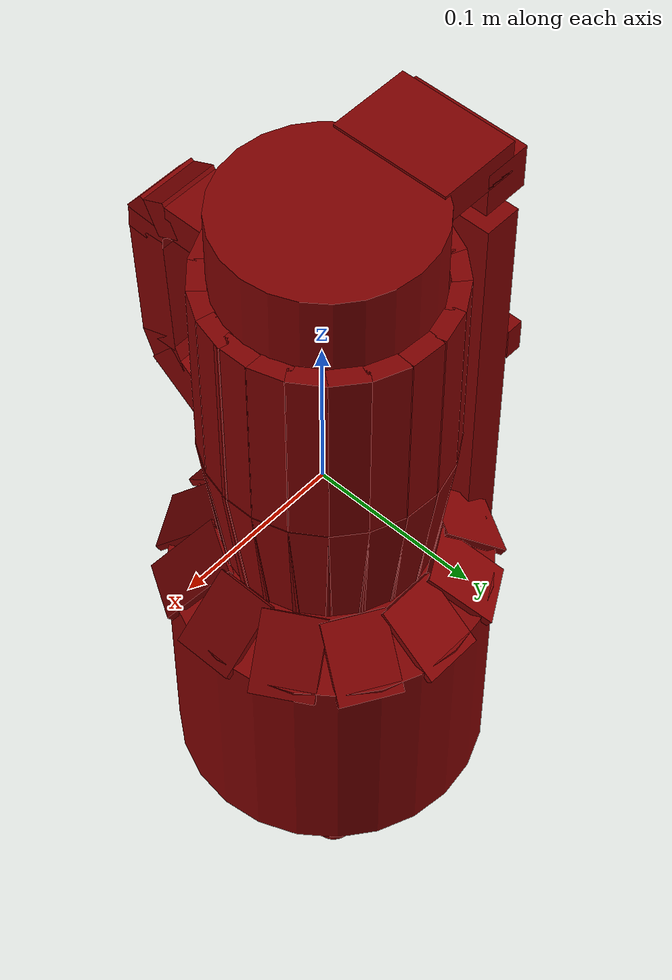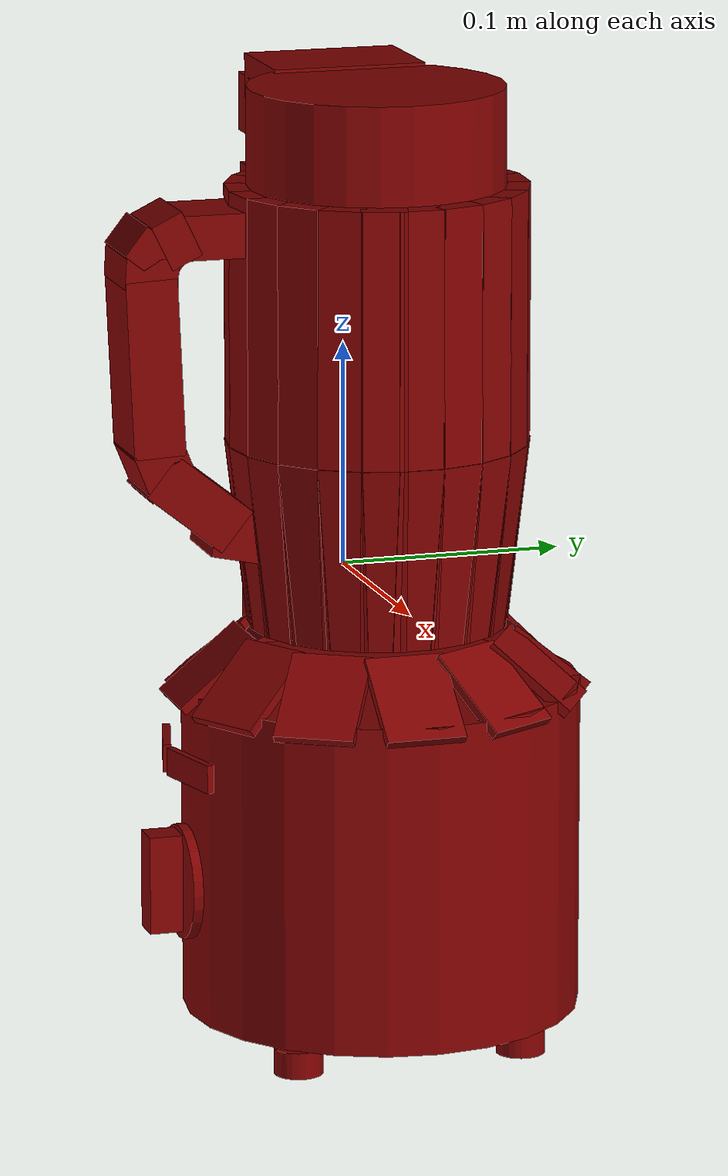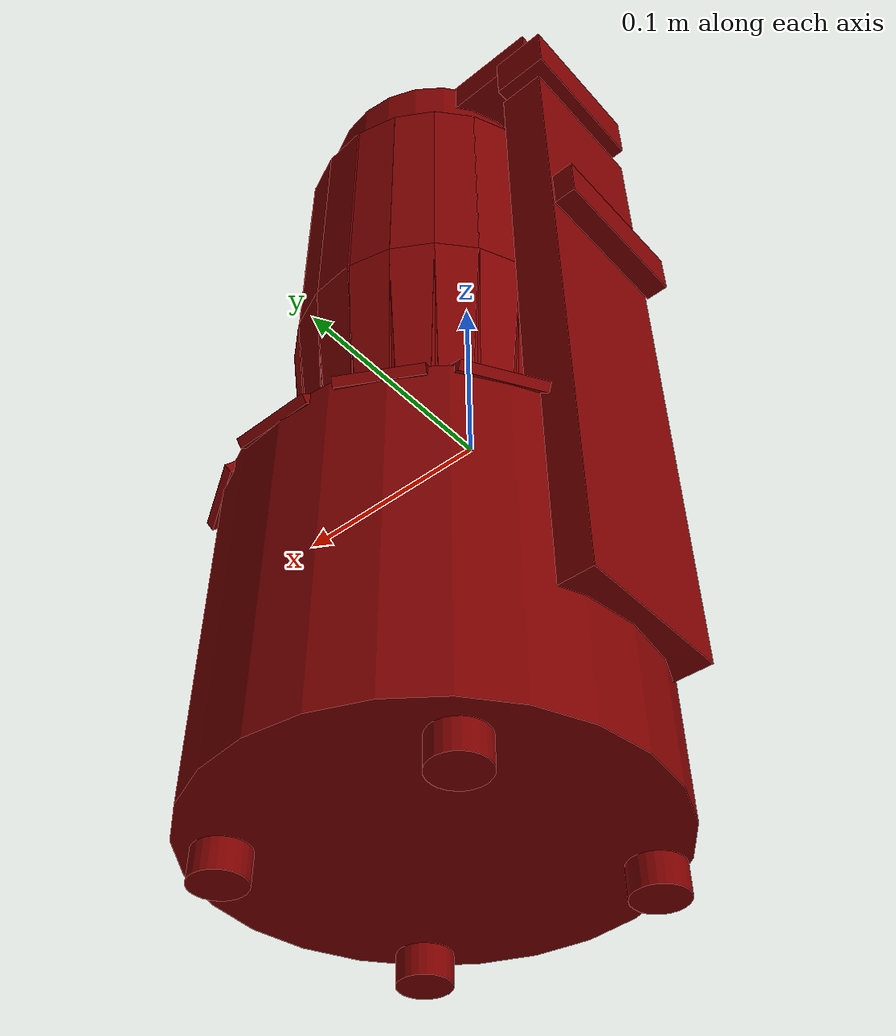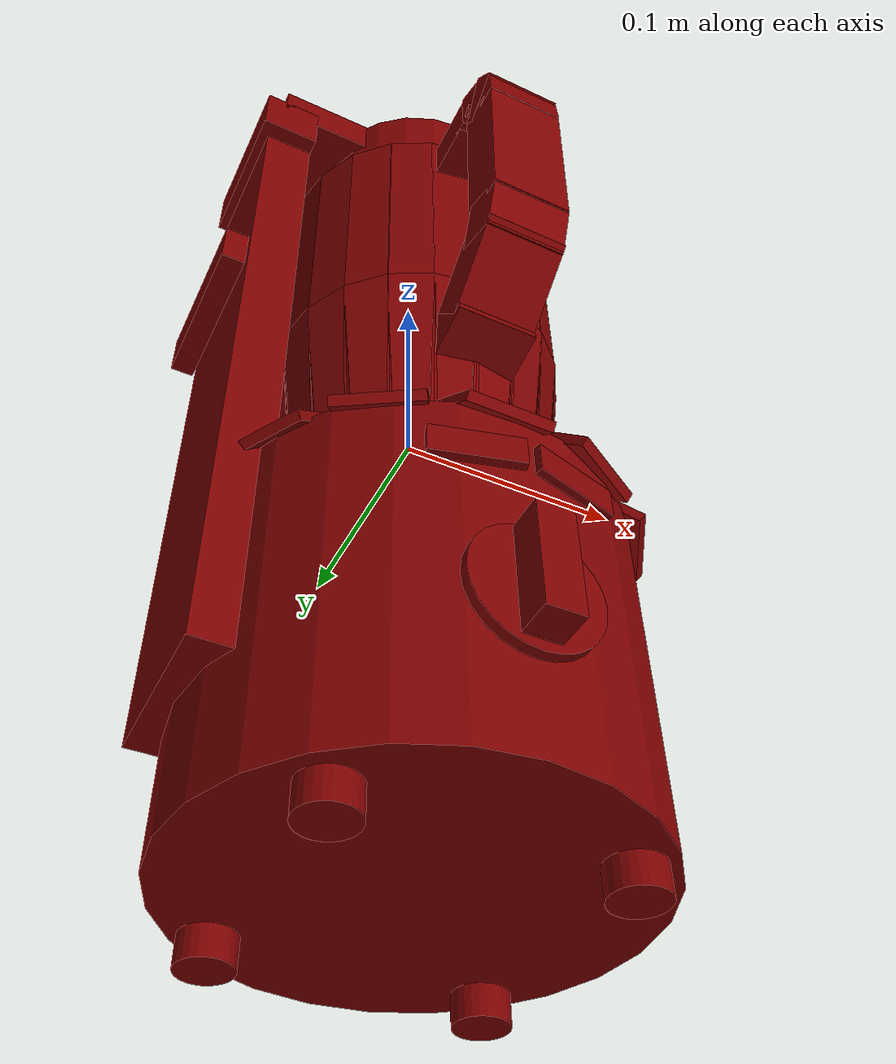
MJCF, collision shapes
<?xml version='1.0' encoding='UTF-8'?>
<mujoco model="model">
  <option timestep="0.002" gravity="0.0 0.0 -9.81"/>
  <compiler angle="radian"/>
  <asset>
    <mesh file="visuals/Blade001.obj" name="Blade001_vis"/>
    <mesh file="visuals/Body001.obj" name="Body001_vis"/>
    <mesh file="visuals/Button001.obj" name="Button001_vis"/>
    <mesh file="visuals/Button002.obj" name="Button002_vis"/>
    <mesh file="visuals/Jug001.obj" name="Jug001_vis"/>
    <mesh file="visuals/Jug001_Clear.obj" name="Jug001_Clear_vis"/>
    <mesh file="visuals/Knob001.obj" name="Knob001_vis"/>
    <mesh file="visuals/Lid001.obj" name="Lid001_vis"/>
    <texture file="visuals/T_BC001.png" name="Body001_material" type="2d"/>
    <material name="Body001_material" rgba="1 1 1 1.0" texture="Body001_material" shininess="0.5" specular="5"/>
    <texture file="visuals/T_BC001.png" name="Button001_material" type="2d"/>
    <material name="Button001_material" rgba="1 1 1 1.0" texture="Button001_material" shininess="0.5" specular="5"/>
    <texture file="visuals/T_BC001.png" name="Button002_material" type="2d"/>
    <material name="Button002_material" rgba="1 1 1 1.0" texture="Button002_material" shininess="0.5" specular="5"/>
    <material name="Jug001_Clear_material" rgba="0.20520606637001038 0.20520606637001038 0.20520606637001038 0.699999988079071" shininess="0.5" specular="0.33333333333333337"/>
    <texture file="visuals/T_BC001.png" name="Jug001_material" type="2d"/>
    <material name="Jug001_material" rgba="1 1 1 1.0" texture="Jug001_material" shininess="0.5" specular="5"/>
    <texture file="visuals/T_BC001.png" name="Blade001_material" type="2d"/>
    <material name="Blade001_material" rgba="1 1 1 1.0" texture="Blade001_material" shininess="0.5" specular="5"/>
    <texture file="visuals/T_BC001.png" name="Lid001_material" type="2d"/>
    <material name="Lid001_material" rgba="1 1 1 1.0" texture="Lid001_material" shininess="0.5" specular="5"/>
    <texture file="visuals/T_BC001.png" name="Knob001_material" type="2d"/>
    <material name="Knob001_material" rgba="1 1 1 1.0" texture="Knob001_material" shininess="0.5" specular="5"/>
  </asset>
  <default>
    <default class="visual">
      <geom conaffinity="0" contype="0" group="1" type="mesh"/>
    </default>
    <default class="collision">
      <geom group="0" rgba="0.5 0 0 0.5"/>
    </default>
    <default class="spawn">
      <geom group="0" rgba="1 1 1 0.5" contype="0" conaffinity="0"/>
      <site group="0" rgba="1 1 1 0.5"/>
    </default>
    <default class="region">
      <geom group="1" conaffinity="0" contype="0" rgba="0 1 0 0"/>
    </default>
  </default>
  <worldbody>
    <body>
      <body name="object">
        <geom mesh="Body001_vis" type="mesh" solimp="0.998 0.998 0.001" solref="0.001 1" friction="0.95 0.3 0.1" class="visual" material="Body001_material"/>
        <geom class="collision" type="cylinder" pos="0.009167336858808994 0.014553274028003216 -0.12578082084655762" size="0.08897651731967926 0.0742231234908104" quat="1.0 0.0 0.0 0.0"/>
        <geom class="collision" type="cylinder" pos="-0.0438687689602375 -0.04000339284539223 -0.20879435539245605" size="0.010947813279926777 0.005990022327750921" quat="1.0 0.0 0.0 0.0"/>
        <geom class="collision" type="cylinder" pos="-0.0438687689602375 0.06400258839130402 -0.20879435539245605" size="0.010947813279926777 0.005990022327750921" quat="1.0 0.0 0.0 0.0"/>
        <geom class="collision" type="cylinder" pos="0.06053082272410393 0.06400258839130402 -0.20879435539245605" size="0.010947813279926777 0.005990022327750921" quat="1.0 0.0 0.0 0.0"/>
        <geom class="collision" type="cylinder" pos="0.06053082272410393 -0.03901239112019539 -0.20879435539245605" size="0.010947813279926777 0.005990022327750921" quat="1.0 0.0 0.0 0.0"/>
        <geom class="collision" type="box" pos="-0.07675522565841675 0.012925026938319206 0.00845596194267273" size="0.01111669186502695 0.03465075045824051 0.1581081598997116" quat="1.0 0.0 0.0 0.0"/>
        <geom class="collision" type="box" pos="-0.09404212236404419 0.012925045564770699 0.06534761190414429" size="0.005173718556761742 0.03465075045824051 0.010062074288725853" quat="1.0 0.0 0.0 0.0"/>
        <geom class="collision" type="box" pos="0.003289484418928623 -0.06258165836334229 -0.04266763851046562" size="0.01791430450975895 0.002153511391952634 0.022576989606022835" quat="0.9047101140022278 -0.42602771520614624 0.0 0.0"/>
        <geom class="collision" type="box" pos="0.08304135501384735 0.007437243591994047 -0.04266763851046562" size="0.01791430450975895 0.002153511391952634 0.022576989606022835" quat="0.6397266983985901 -0.30124709010124207 -0.30124709010124207 0.6397266387939453"/>
        <geom class="collision" type="box" pos="0.0130224684253335 0.08718912303447723 -0.04266763851046562" size="0.01791430450975895 0.002153511391952634 0.022576989606022835" quat="6.830371290789117e-08 -3.2164201968498674e-08 -0.42602771520614624 0.9047101140022278"/>
        <geom class="collision" type="box" pos="-0.06672942638397217 0.017170220613479614 -0.04266763851046562" size="0.01791430450975895 0.002153511391952634 0.022576989606022835" quat="0.6397266983985901 -0.30124709010124207 0.30124709010124207 -0.6397266387939453"/>
        <geom class="collision" type="box" pos="-0.05915476381778717 -0.02087409794330597 -0.04266763851046562" size="0.01791430450975895 0.0021535116247832775 0.022576989606022835" quat="0.7833322882652283 -0.36887127161026 0.21315228939056396 -0.45264843106269836"/>
        <geom class="collision" type="box" pos="-0.025021851062774658 0.07961447536945343 -0.04266763851046562" size="0.01791430450975895 0.002153511391952634 0.022576991468667984" quat="0.23382920026779175 -0.11011011153459549 0.4115525782108307 -0.8739703297615051"/>
        <geom class="collision" type="box" pos="0.07546672224998474 0.04548153281211853 -0.04266763851046562" size="0.0179143063724041 0.002153511391952634 0.022576991468667984" quat="0.4526483714580536 -0.2131519764661789 -0.3688710331916809 0.7833325266838074"/>
        <geom class="collision" type="box" pos="0.04133378341794014 -0.05500700697302818 -0.04266763851046562" size="0.01791430450975895 0.002153511391952634 0.022576989606022835" quat="0.8739704489707947 -0.41155242919921875 -0.1101100891828537 0.2338290959596634"/>
        <geom class="collision" type="box" pos="0.07005342841148376 -0.030125122517347336 -0.04266763851046562" size="0.01791430450975895 0.002153511391952634 0.022576989606022835" quat="0.7862945199012756 -0.37026602029800415 -0.2107197642326355 0.4474831223487854"/>
        <geom class="collision" type="box" pos="0.050584837794303894 0.07420118153095245 -0.04266763851046562" size="0.01791430450975895 0.002153511391952634 0.022576989606022835" quat="0.239576056599617 -0.11281633377075195 -0.41081881523132324 0.8724125623703003"/>
        <geom class="collision" type="box" pos="-0.05374151095747948 0.054732564836740494 -0.04266763851046562" size="0.0179143063724041 0.0021535116247832775 0.022576989606022835" quat="0.44748300313949585 -0.2107197493314743 0.3702661097049713 -0.7862945795059204"/>
        <geom class="collision" type="box" pos="-0.034272849559783936 -0.04959375038743019 -0.04266763851046562" size="0.01791430450975895 0.002153511391952634 0.022576989606022835" quat="0.8724126815795898 -0.41081884503364563 0.11281614750623703 -0.23957571387290955"/>
        <body name="Button001">
          <joint axis="0.0 1.0 0.0" pos="0.027376335114240646 -0.0752200186252594 -0.08264592289924622" limited="true" name="Button001_joint" range="0.0 0.003" type="slide" damping="1" frictionloss="1" armature=".01" stiffness="0.05"/>
          <geom mesh="Button001_vis" type="mesh" solimp="0.998 0.998 0.001" solref="0.001 1" friction="0.95 0.3 0.1" class="visual" material="Button001_material"/>
          <geom class="collision" type="box" pos="0.027224652469158173 -0.07862499356269836 -0.0820646584033966" size="0.01785707287490368 0.0016842279583215714 0.006336010526865721" quat="1.9311312371428357e-07 0.9918130040168762 0.12769858539104462 2.4863851422196603e-08"/>
        </body>
        <body name="Button002">
          <joint axis="0.0 1.0 0.0" pos="-0.011064638383686543 -0.0752200186252594 -0.082645945250988" limited="true" name="Button002_joint" range="0.0 0.003" type="slide" damping="1" frictionloss="1" armature=".01" stiffness="0.05"/>
          <geom mesh="Button002_vis" type="mesh" solimp="0.998 0.998 0.001" solref="0.001 1" friction="0.95 0.3 0.1" class="visual" material="Button002_material"/>
          <geom class="collision" type="box" pos="-0.011580152437090874 -0.07876469194889069 -0.0820646584033966" size="0.01785707287490368 0.0018286375561729074 0.006336010526865721" quat="0.9918130040168762 0.0 0.0 -0.12769854068756104"/>
        </body>
        <body name="Jug001_Clear">
          <geom class="region" name="reg_int" type="box" pos="0.007289262488484383 0.009716581553220749 0.08258548565208912" size="0.026410274043679238 0.04033459147810936 0.059037130162119866"/>
          <joint axis="0.0 0.0 1.0" pos="0.00863971933722496 -0.00982004776597023 0.05251220613718033" limited="true" name="Jug001_Clear_joint" range="0.0 0.1" type="slide" damping="50" frictionloss="0.1" armature="0" stiffness="0.01" springref="-0.1"/>
          <geom mesh="Jug001_Clear_vis" type="mesh" solimp="0.998 0.998 0.001" solref="0.001 1" friction="0.95 0.3 0.1" class="visual" material="Jug001_Clear_material"/>
          <geom class="collision" type="box" pos="0.008145440369844437 -0.09233808517456055 0.0985330119729042" size="0.017747683450579643 0.011645330116152763 0.03932574763894081" quat="0.9997620582580566 0.02181391417980194 0.0 0.0"/>
          <geom class="collision" type="box" pos="0.008145440369844437 -0.0727827250957489 0.03710109740495682" size="0.017747683450579643 0.011384028941392899 0.02155306562781334" quat="0.9015772342681885 0.432618111371994 9.606053085789741e-17 -1.3425420219842853e-23"/>
          <geom class="collision" type="box" pos="0.008145440369844437 -0.063360795378685 0.15545439720153809" size="0.017747683450579643 0.009914803318679333 0.015667669475078583" quat="0.7071067094802856 -0.70710688829422 -1.5700925641616852e-16 -1.2790027470567158e-23"/>
          <geom class="collision" type="box" pos="0.0706438422203064 0.01299198903143406 0.11365347355604172" size="0.00505654513835907 0.010174985975027084 0.058163709938526154" quat="1.0 0.0 0.0 0.0"/>
          <geom class="collision" type="box" pos="0.06611348688602448 0.012991990894079208 0.0168859101831913" size="0.0050565446726977825 0.010174985975027084 0.041744377464056015" quat="0.9982317090034485 -6.2111596180430655e-15 0.05944285914301872 7.986672656556948e-09"/>
          <geom class="collision" type="box" pos="0.06798288226127625 0.030981726944446564 0.11365347355604172" size="0.00505654513835907 0.01017498504370451 0.058163709938526154" quat="0.9890410900115967 0.0 0.0 0.14764051139354706"/>
          <geom class="collision" type="box" pos="0.06365001201629639 0.029658660292625427 0.0168859101831913" size="0.005056544207036495 0.01017498504370451 0.041744377464056015" quat="0.9872921705245972 -0.008776139467954636 0.0587911531329155 0.14737960696220398"/>
          <geom class="collision" type="box" pos="0.060215145349502563 0.04736381396651268 0.11365347355604172" size="0.0050565446726977825 0.01017498504370451 0.058163709938526154" quat="0.9565365314483643 0.0 0.0 0.2916126251220703"/>
          <geom class="collision" type="box" pos="0.05645528435707092 0.044836435467004776 0.01688591204583645" size="0.0050565446726977825 0.010174985975027084 0.041744377464056015" quat="0.954845130443573 -0.017334159463644028 0.05685893073678017 0.29109683632850647"/>
          <geom class="collision" type="box" pos="0.04783382639288902 0.06092069670557976 0.11365347355604172" size="0.00505654513835907 0.010174985975027084 0.058163709938526154" quat="0.9023839831352234 0.0 0.0 0.430932879447937"/>
          <geom class="collision" type="box" pos="0.0449860580265522 0.05739729106426239 0.016885913908481598" size="0.0050565446726977825 0.010174985975027084 0.041744377464056015" quat="0.9007882475852966 -0.025615708902478218 0.05363990366458893 0.4301709830760956"/>
          <geom class="collision" type="box" pos="0.031883951276540756 0.07027436792850494 0.11365347355604172" size="0.0050565446726977825 0.01017498504370451 0.058163709938526154" quat="0.8274691104888916 0.0 0.0 0.561511218547821"/>
          <geom class="collision" type="box" pos="0.030210386961698532 0.06606444716453552 0.016885913908481598" size="0.005056543741375208 0.01017498504370451 0.041744377464056015" quat="0.8260060548782349 -0.03337758034467697 0.04918677359819412 0.5605181455612183"/>
          <geom class="collision" type="box" pos="0.013209659606218338 0.07452081143856049 0.11365347355604172" size="0.00505654513835907 0.010174986906349659 0.058163709938526154" quat="0.7301030158996582 0.0 0.0 0.6833370923995972"/>
          <geom class="collision" type="box" pos="0.012910204008221626 0.07000035047531128 0.016885913908481598" size="0.005056544207036495 0.010174986906349659 0.041744377464056015" quat="0.7288120985031128 -0.04061921685934067 0.043399106711149216 0.6821286678314209"/>
          <geom class="collision" type="box" pos="-0.0062417201697826385 0.07273058593273163 0.11365347355604172" size="0.005056543741375208 0.01017498504370451 0.058163709938526154" quat="0.6124966144561768 0.0 0.0 0.790473222732544"/>
          <geom class="collision" type="box" pos="-0.005110526457428932 0.06834371387958527 0.016885913908481598" size="0.0050565446726977825 0.010174985975027084 0.041744377464056015" quat="0.6114134192466736 -0.04698765277862549 0.036408279091119766 0.7890755534172058"/>
          <geom class="collision" type="box" pos="-0.023400038480758667 0.06541426479816437 0.11365347355604172" size="0.00505654513835907 0.010174985975027084 0.058163709938526154" quat="0.48572608828544617 0.0 0.0 0.8741110563278198"/>
          <geom class="collision" type="box" pos="-0.021007366478443146 0.0615672804415226 0.01688591204583645" size="0.0050565446726977825 0.010174986906349659 0.041744377464056015" quat="0.4848670959472656 -0.05195935070514679 0.02887275069952011 0.8725654482841492"/>
          <geom class="collision" type="box" pos="-0.037419747561216354 0.053482893854379654 0.11365347355604172" size="0.00505654513835907 0.010174985975027084 0.058163709938526154" quat="0.3496263027191162 0.0 0.0 0.9368892312049866"/>
          <geom class="collision" type="box" pos="-0.03399694710969925 0.05051495507359505 0.016885913908481598" size="0.005056544207036495 0.010174985975027084 0.041744377464056015" quat="0.34900808334350586 -0.055690962821245193 0.020782630890607834 0.9352325797080994"/>
          <geom class="collision" type="box" pos="-0.04721221700310707 0.03810887411236763 0.11365347355604172" size="0.00505654513835907 0.010174986906349659 0.058163709938526154" quat="0.20713196694850922 0.0 0.0 0.9783130288124084"/>
          <geom class="collision" type="box" pos="-0.04307058826088905 0.0362728089094162 0.01688591204583645" size="0.0050565446726977825 0.010174986906349659 0.041744377464056015" quat="0.20676571130752563 -0.058153312653303146 0.012312428094446659 0.9765831232070923"/>
          <geom class="collision" type="box" pos="-0.052132368087768555 0.020062051713466644 0.11365347355604172" size="0.00505654513835907 0.010174985975027084 0.058163709938526154" quat="0.05616064369678497 0.0 0.0 0.9984217286109924"/>
          <geom class="collision" type="box" pos="-0.04763057827949524 0.019554000347852707 0.01688591204583645" size="0.0050565446726977825 0.010174985975027084 0.041744377464056015" quat="0.056061338633298874 -0.05934862047433853 0.00333832623437047 0.9966562986373901"/>
          <geom class="collision" type="box" pos="-0.05142613872885704 0.0014652842655777931 0.11365347355604172" size="0.00505654513835907 0.010174985975027084 0.058163709938526154" quat="0.09533408284187317 0.0 0.0 -0.9954453110694885"/>
          <geom class="collision" type="box" pos="-0.046978119760751724 0.002325148321688175 0.01688591204583645" size="0.005056544207036495 0.010174985975027084 0.041744377464056015" quat="0.09516550600528717 0.059171710163354874 0.0056668901816010475 -0.9936851263046265"/>
          <geom class="collision" type="box" pos="-0.045064400881528854 -0.016317259520292282 0.11365347355604172" size="0.00505654513835907 0.010174985975027084 0.058163709938526154" quat="0.2468382567167282 0.0 0.0 -0.9690566658973694"/>
          <geom class="collision" type="box" pos="-0.041086096316576004 -0.014149930328130722 0.01688591204583645" size="0.0050565446726977825 0.010174985975027084 0.041744377464056015" quat="0.24640178680419922 0.057603031396865845 0.014672650955617428 -0.9673431515693665"/>
          <geom class="collision" type="box" pos="-0.033940453082323074 -0.031018968671560287 0.11365347355604172" size="0.00505654513835907 0.010174985975027084 0.058163709938526154" quat="0.38909995555877686 0.0 0.0 -0.9211955666542053"/>
          <geom class="collision" type="box" pos="-0.03078186884522438 -0.027771256864070892 0.01688591204583645" size="0.0050565446726977825 0.010174985975027084 0.041744377464056015" quat="0.38841190934181213 0.05475810542702675 0.023129049688577652 -0.9195666313171387"/>
          <geom class="collision" type="box" pos="-0.01852252334356308 -0.0419926680624485 0.11365347355604172" size="0.00505654513835907 0.010174985975027084 0.058163709938526154" quat="0.5260125398635864 0.0 0.0 -0.8504768013954163"/>
          <geom class="collision" type="box" pos="-0.016499163582921028 -0.03793924301862717 0.01688591204583645" size="0.0050565446726977825 0.010174985975027084 0.041744377464056015" quat="0.5250824093818665 0.05055440962314606 0.03126746788620949 -0.8489729762077332"/>
          <geom class="collision" type="box" pos="-0.0011654067784547806 -0.04765874519944191 0.11365347355604172" size="0.00505654513835907 0.010174985975027084 0.058163709938526154" quat="0.6462706327438354 0.0 0.0 -0.7631083130836487"/>
          <geom class="collision" type="box" pos="-0.00041939783841371536 -0.04319022223353386 0.0168859101831913" size="0.005056544207036495 0.010174985975027084 0.041744377464056015" quat="0.6451278328895569 0.04536105692386627 0.03841593489050865 -0.7617589235305786"/>
          <geom class="collision" type="box" pos="0.016947153955698013 -0.04800551012158394 0.11365347355604172" size="0.005056543741375208 0.010174984112381935 0.058163709938526154" quat="0.751477062702179 0.0 0.0 -0.6597592234611511"/>
          <geom class="collision" type="box" pos="0.01636076159775257 -0.04351324960589409 0.01688591204583645" size="0.0050565446726977825 0.010174984112381935 0.041744377464056015" quat="0.7501482367515564 0.0392177514731884 0.04466966167092323 -0.6585925817489624"/>
          <geom class="collision" type="box" pos="0.03481881693005562 -0.042866017669439316 0.11365347355604172" size="0.00505654513835907 0.010174985975027084 0.058163709938526154" quat="0.8424695730209351 0.0 0.0 -0.5387439131736755"/>
          <geom class="collision" type="box" pos="0.0329182930290699 -0.03875356912612915 0.01688591204583645" size="0.0050565446726977825 0.010174987837672234 0.041744377464056015" quat="0.8409799337387085 0.03202425315976143 0.050078462809324265 -0.5377911925315857"/>
          <geom class="collision" type="box" pos="0.05017935112118721 -0.03277253732085228 0.11365347355604172" size="0.00505654513835907 0.010174985975027084 0.058163709938526154" quat="0.9134286046028137 0.0 0.0 -0.40699896216392517"/>
          <geom class="collision" type="box" pos="0.04714988172054291 -0.02940407767891884 0.0168859101831913" size="0.0050565446726977825 0.010174985975027084 0.041744377464056015" quat="0.9118134379386902 0.024193018674850464 0.05429643392562866 -0.4062793254852295"/>
          <geom class="collision" type="box" pos="0.061763882637023926 -0.018784044310450554 0.11365347355604172" size="0.00505654513835907 0.010174985975027084 0.058163709938526154" quat="0.9634576439857483 0.0 0.0 -0.2678607404232025"/>
          <geom class="collision" type="box" pos="0.0578836090862751 -0.01644572988152504 0.016885904595255852" size="0.005056545604020357 0.010174985975027084 0.041744377464056015" quat="0.9617539644241333 0.015922321006655693 0.057270318269729614 -0.2673872411251068"/>
          <geom class="collision" type="box" pos="0.0687098354101181 -0.0022389525547623634 0.11365347355604172" size="0.00505654513835907 0.010174985975027084 0.058163709938526154" quat="0.9922011494636536 0.0 0.0 -0.12464700639247894"/>
          <geom class="collision" type="box" pos="0.06432025134563446 -0.0011183731257915497 0.016885904595255852" size="0.0050565446726977825 0.010174985975027084 0.041744377464056015" quat="0.9904466867446899 0.007409313693642616 0.05897891893982887 -0.12442638725042343"/>
          <geom class="collision" type="box" pos="0.008145440369844437 -0.08243346214294434 0.15452764928340912" size="0.017747683450579643 0.010718049481511116 0.00749454740434885" quat="0.8469546437263489 -0.5316651463508606 -1.530577021334394e-16 3.500420233682295e-17"/>
          <geom class="collision" type="box" pos="0.008145440369844437 -0.09135900437831879 0.14814645051956177" size="0.017747683450579643 0.01185432355850935 0.00811900943517685" quat="0.9448847770690918 -0.3274030089378357 -2.090412859910283e-16 -6.73083680402646e-17"/>
          <geom class="collision" type="box" pos="0.008145440369844437 -0.09370072185993195 0.14054805040359497" size="0.017747683450579643 0.01185432355850935 0.006813131272792816" quat="0.9994563460350037 -0.032970741391181946 -2.19597169398389e-16 -2.3994886228211198e-18"/>
          <geom class="collision" type="box" pos="0.008145440369844437 -0.0877424031496048 0.053584858775138855" size="0.017747683450579643 0.011384028941392899 0.01130683347582817" quat="0.981878936290741 0.18950937688350677 9.291213586273277e-17 2.4391799332567724e-17"/>
          <geom class="collision" type="box" pos="0.008145440369844437 -0.05458572134375572 0.02222570776939392" size="0.017747683450579643 0.011384028941392899 0.01130683347582817" quat="0.778609037399292 0.627509355545044 9.35099161303677e-17 -2.1988986891250213e-17"/>
          <body name="Jug001">
            <geom mesh="Jug001_vis" type="mesh" solimp="0.998 0.998 0.001" solref="0.001 1" friction="0.95 0.3 0.1" class="visual" material="Jug001_material"/>
            <geom class="collision" type="box" pos="0.008145440369844437 -0.09233808517456055 0.0985330119729042" size="0.017747683450579643 0.011645330116152763 0.03932574763894081" quat="0.9997620582580566 0.02181391417980194 0.0 0.0"/>
            <geom class="collision" type="box" pos="0.008145440369844437 -0.0727827250957489 0.03710109740495682" size="0.017747683450579643 0.011384028941392899 0.02155306562781334" quat="0.9015772342681885 0.432618111371994 9.606053085789741e-17 -1.3425420219842853e-23"/>
            <geom class="collision" type="box" pos="0.008145440369844437 -0.063360795378685 0.15545439720153809" size="0.017747683450579643 0.009914803318679333 0.015667669475078583" quat="0.7071067094802856 -0.70710688829422 -1.5700925641616852e-16 -1.2790027470567158e-23"/>
            <geom class="collision" type="box" pos="0.0706438422203064 0.01299198903143406 0.11365347355604172" size="0.00505654513835907 0.010174985975027084 0.058163709938526154" quat="1.0 0.0 0.0 0.0"/>
            <geom class="collision" type="box" pos="0.06611348688602448 0.012991990894079208 0.0168859101831913" size="0.0050565446726977825 0.010174985975027084 0.041744377464056015" quat="0.9982317090034485 -6.2111596180430655e-15 0.05944285914301872 7.986672656556948e-09"/>
            <geom class="collision" type="box" pos="0.06798288226127625 0.030981726944446564 0.11365347355604172" size="0.00505654513835907 0.01017498504370451 0.058163709938526154" quat="0.9890410900115967 0.0 0.0 0.14764051139354706"/>
            <geom class="collision" type="box" pos="0.06365001201629639 0.029658660292625427 0.0168859101831913" size="0.005056544207036495 0.01017498504370451 0.041744377464056015" quat="0.9872921705245972 -0.008776139467954636 0.0587911531329155 0.14737960696220398"/>
            <geom class="collision" type="box" pos="0.060215145349502563 0.04736381396651268 0.11365347355604172" size="0.0050565446726977825 0.01017498504370451 0.058163709938526154" quat="0.9565365314483643 0.0 0.0 0.2916126251220703"/>
            <geom class="collision" type="box" pos="0.05645528435707092 0.044836435467004776 0.01688591204583645" size="0.0050565446726977825 0.010174985975027084 0.041744377464056015" quat="0.954845130443573 -0.017334159463644028 0.05685893073678017 0.29109683632850647"/>
            <geom class="collision" type="box" pos="0.04783382639288902 0.06092069670557976 0.11365347355604172" size="0.00505654513835907 0.010174985975027084 0.058163709938526154" quat="0.9023839831352234 0.0 0.0 0.430932879447937"/>
            <geom class="collision" type="box" pos="0.0449860580265522 0.05739729106426239 0.016885913908481598" size="0.0050565446726977825 0.010174985975027084 0.041744377464056015" quat="0.9007882475852966 -0.025615708902478218 0.05363990366458893 0.4301709830760956"/>
            <geom class="collision" type="box" pos="0.031883951276540756 0.07027436792850494 0.11365347355604172" size="0.0050565446726977825 0.01017498504370451 0.058163709938526154" quat="0.8274691104888916 0.0 0.0 0.561511218547821"/>
            <geom class="collision" type="box" pos="0.030210386961698532 0.06606444716453552 0.016885913908481598" size="0.005056543741375208 0.01017498504370451 0.041744377464056015" quat="0.8260060548782349 -0.03337758034467697 0.04918677359819412 0.5605181455612183"/>
            <geom class="collision" type="box" pos="0.013209659606218338 0.07452081143856049 0.11365347355604172" size="0.00505654513835907 0.010174986906349659 0.058163709938526154" quat="0.7301030158996582 0.0 0.0 0.6833370923995972"/>
            <geom class="collision" type="box" pos="0.012910204008221626 0.07000035047531128 0.016885913908481598" size="0.005056544207036495 0.010174986906349659 0.041744377464056015" quat="0.7288120985031128 -0.04061921685934067 0.043399106711149216 0.6821286678314209"/>
            <geom class="collision" type="box" pos="-0.0062417201697826385 0.07273058593273163 0.11365347355604172" size="0.005056543741375208 0.01017498504370451 0.058163709938526154" quat="0.6124966144561768 0.0 0.0 0.790473222732544"/>
            <geom class="collision" type="box" pos="-0.005110526457428932 0.06834371387958527 0.016885913908481598" size="0.0050565446726977825 0.010174985975027084 0.041744377464056015" quat="0.6114134192466736 -0.04698765277862549 0.036408279091119766 0.7890755534172058"/>
            <geom class="collision" type="box" pos="-0.023400038480758667 0.06541426479816437 0.11365347355604172" size="0.00505654513835907 0.010174985975027084 0.058163709938526154" quat="0.48572608828544617 0.0 0.0 0.8741110563278198"/>
            <geom class="collision" type="box" pos="-0.021007366478443146 0.0615672804415226 0.01688591204583645" size="0.0050565446726977825 0.010174986906349659 0.041744377464056015" quat="0.4848670959472656 -0.05195935070514679 0.02887275069952011 0.8725654482841492"/>
            <geom class="collision" type="box" pos="-0.037419747561216354 0.053482893854379654 0.11365347355604172" size="0.00505654513835907 0.010174985975027084 0.058163709938526154" quat="0.3496263027191162 0.0 0.0 0.9368892312049866"/>
            <geom class="collision" type="box" pos="-0.03399694710969925 0.05051495507359505 0.016885913908481598" size="0.005056544207036495 0.010174985975027084 0.041744377464056015" quat="0.34900808334350586 -0.055690962821245193 0.020782630890607834 0.9352325797080994"/>
            <geom class="collision" type="box" pos="-0.04721221700310707 0.03810887411236763 0.11365347355604172" size="0.00505654513835907 0.010174986906349659 0.058163709938526154" quat="0.20713196694850922 0.0 0.0 0.9783130288124084"/>
            <geom class="collision" type="box" pos="-0.04307058826088905 0.0362728089094162 0.01688591204583645" size="0.0050565446726977825 0.010174986906349659 0.041744377464056015" quat="0.20676571130752563 -0.058153312653303146 0.012312428094446659 0.9765831232070923"/>
            <geom class="collision" type="box" pos="-0.052132368087768555 0.020062051713466644 0.11365347355604172" size="0.00505654513835907 0.010174985975027084 0.058163709938526154" quat="0.05616064369678497 0.0 0.0 0.9984217286109924"/>
            <geom class="collision" type="box" pos="-0.04763057827949524 0.019554000347852707 0.01688591204583645" size="0.0050565446726977825 0.010174985975027084 0.041744377464056015" quat="0.056061338633298874 -0.05934862047433853 0.00333832623437047 0.9966562986373901"/>
            <geom class="collision" type="box" pos="-0.05142613872885704 0.0014652842655777931 0.11365347355604172" size="0.00505654513835907 0.010174985975027084 0.058163709938526154" quat="0.09533408284187317 0.0 0.0 -0.9954453110694885"/>
            <geom class="collision" type="box" pos="-0.046978119760751724 0.002325148321688175 0.01688591204583645" size="0.005056544207036495 0.010174985975027084 0.041744377464056015" quat="0.09516550600528717 0.059171710163354874 0.0056668901816010475 -0.9936851263046265"/>
            <geom class="collision" type="box" pos="-0.045064400881528854 -0.016317259520292282 0.11365347355604172" size="0.00505654513835907 0.010174985975027084 0.058163709938526154" quat="0.2468382567167282 0.0 0.0 -0.9690566658973694"/>
            <geom class="collision" type="box" pos="-0.041086096316576004 -0.014149930328130722 0.01688591204583645" size="0.0050565446726977825 0.010174985975027084 0.041744377464056015" quat="0.24640178680419922 0.057603031396865845 0.014672650955617428 -0.9673431515693665"/>
            <geom class="collision" type="box" pos="-0.033940453082323074 -0.031018968671560287 0.11365347355604172" size="0.00505654513835907 0.010174985975027084 0.058163709938526154" quat="0.38909995555877686 0.0 0.0 -0.9211955666542053"/>
            <geom class="collision" type="box" pos="-0.03078186884522438 -0.027771256864070892 0.01688591204583645" size="0.0050565446726977825 0.010174985975027084 0.041744377464056015" quat="0.38841190934181213 0.05475810542702675 0.023129049688577652 -0.9195666313171387"/>
            <geom class="collision" type="box" pos="-0.01852252334356308 -0.0419926680624485 0.11365347355604172" size="0.00505654513835907 0.010174985975027084 0.058163709938526154" quat="0.5260125398635864 0.0 0.0 -0.8504768013954163"/>
            <geom class="collision" type="box" pos="-0.016499163582921028 -0.03793924301862717 0.01688591204583645" size="0.0050565446726977825 0.010174985975027084 0.041744377464056015" quat="0.5250824093818665 0.05055440962314606 0.03126746788620949 -0.8489729762077332"/>
            <geom class="collision" type="box" pos="-0.0011654067784547806 -0.04765874519944191 0.11365347355604172" size="0.00505654513835907 0.010174985975027084 0.058163709938526154" quat="0.6462706327438354 0.0 0.0 -0.7631083130836487"/>
            <geom class="collision" type="box" pos="-0.00041939783841371536 -0.04319022223353386 0.0168859101831913" size="0.005056544207036495 0.010174985975027084 0.041744377464056015" quat="0.6451278328895569 0.04536105692386627 0.03841593489050865 -0.7617589235305786"/>
            <geom class="collision" type="box" pos="0.016947153955698013 -0.04800551012158394 0.11365347355604172" size="0.005056543741375208 0.010174984112381935 0.058163709938526154" quat="0.751477062702179 0.0 0.0 -0.6597592234611511"/>
            <geom class="collision" type="box" pos="0.01636076159775257 -0.04351324960589409 0.01688591204583645" size="0.0050565446726977825 0.010174984112381935 0.041744377464056015" quat="0.7501482367515564 0.0392177514731884 0.04466966167092323 -0.6585925817489624"/>
            <geom class="collision" type="box" pos="0.03481881693005562 -0.042866017669439316 0.11365347355604172" size="0.00505654513835907 0.010174985975027084 0.058163709938526154" quat="0.8424695730209351 0.0 0.0 -0.5387439131736755"/>
            <geom class="collision" type="box" pos="0.0329182930290699 -0.03875356912612915 0.01688591204583645" size="0.0050565446726977825 0.010174987837672234 0.041744377464056015" quat="0.8409799337387085 0.03202425315976143 0.050078462809324265 -0.5377911925315857"/>
            <geom class="collision" type="box" pos="0.05017935112118721 -0.03277253732085228 0.11365347355604172" size="0.00505654513835907 0.010174985975027084 0.058163709938526154" quat="0.9134286046028137 0.0 0.0 -0.40699896216392517"/>
            <geom class="collision" type="box" pos="0.04714988172054291 -0.02940407767891884 0.0168859101831913" size="0.0050565446726977825 0.010174985975027084 0.041744377464056015" quat="0.9118134379386902 0.024193018674850464 0.05429643392562866 -0.4062793254852295"/>
            <geom class="collision" type="box" pos="0.061763882637023926 -0.018784044310450554 0.11365347355604172" size="0.00505654513835907 0.010174985975027084 0.058163709938526154" quat="0.9634576439857483 0.0 0.0 -0.2678607404232025"/>
            <geom class="collision" type="box" pos="0.0578836090862751 -0.01644572988152504 0.016885904595255852" size="0.005056545604020357 0.010174985975027084 0.041744377464056015" quat="0.9617539644241333 0.015922321006655693 0.057270318269729614 -0.2673872411251068"/>
            <geom class="collision" type="box" pos="0.0687098354101181 -0.0022389525547623634 0.11365347355604172" size="0.00505654513835907 0.010174985975027084 0.058163709938526154" quat="0.9922011494636536 0.0 0.0 -0.12464700639247894"/>
            <geom class="collision" type="box" pos="0.06432025134563446 -0.0011183731257915497 0.016885904595255852" size="0.0050565446726977825 0.010174985975027084 0.041744377464056015" quat="0.9904466867446899 0.007409313693642616 0.05897891893982887 -0.12442638725042343"/>
            <geom class="collision" type="cylinder" pos="0.009167336858808994 0.010747300460934639 -0.01664736121892929" size="0.03830718621611595 0.008834727108478546" quat="1.0 0.0 0.0 0.0"/>
            <geom class="collision" type="box" pos="0.008145440369844437 -0.08243346214294434 0.15452764928340912" size="0.017747683450579643 0.010718049481511116 0.00749454740434885" quat="0.8469546437263489 -0.5316651463508606 -1.530577021334394e-16 3.500420233682295e-17"/>
            <geom class="collision" type="box" pos="0.008145440369844437 -0.09135900437831879 0.14814645051956177" size="0.017747683450579643 0.01185432355850935 0.00811900943517685" quat="0.9448847770690918 -0.3274030089378357 -2.090412859910283e-16 -6.73083680402646e-17"/>
            <geom class="collision" type="box" pos="0.008145440369844437 -0.09370072185993195 0.14054805040359497" size="0.017747683450579643 0.01185432355850935 0.006813131272792816" quat="0.9994563460350037 -0.032970741391181946 -2.19597169398389e-16 -2.3994886228211198e-18"/>
            <geom class="collision" type="box" pos="0.008145440369844437 -0.0877424031496048 0.053584858775138855" size="0.017747683450579643 0.011384028941392899 0.01130683347582817" quat="0.981878936290741 0.18950937688350677 9.291213586273277e-17 2.4391799332567724e-17"/>
            <geom class="collision" type="box" pos="0.008145440369844437 -0.05458572134375572 0.02222570776939392" size="0.017747683450579643 0.011384028941392899 0.01130683347582817" quat="0.778609037399292 0.627509355545044 9.35099161303677e-17 -2.1988986891250213e-17"/>
            <body name="Blade001">
              <joint axis="0.0 0.0 1.0" pos="0.00858314149081707 0.01025422289967537 0.003426073119044304" limited="false" name="Blade001_joint" range="0 360" type="hinge" damping="1" frictionloss="1" armature=".01" stiffness="0.05"/>
              <geom mesh="Blade001_vis" type="mesh" solimp="0.998 0.998 0.001" solref="0.001 1" friction="0.95 0.3 0.1" class="visual" material="Blade001_material"/>
              <geom class="collision" type="cylinder" pos="0.009167336858808994 0.010747300460934639 0.005740303546190262" size="0.032478395849466324 0.01222135964781046" quat="1.0 0.0 0.0 0.0"/>
            </body>
          </body>
          <body name="Lid001">
            <joint axis="0.0 0.0 1.0" pos="-0.006213977932929993 0.008265789598226547 0.18113911151885986" limited="true" name="Lid001_joint" range="0.0 0.1" type="slide" damping="1" frictionloss="1" armature=".01" stiffness="0.05"/>
            <geom mesh="Lid001_vis" type="mesh" solimp="0.998 0.998 0.001" solref="0.001 1" friction="0.95 0.3 0.1" class="visual" material="Lid001_material"/>
            <geom class="collision" type="cylinder" pos="0.009167336858808994 0.012469375506043434 0.18099525570869446" size="0.057080235332250595 0.03464759141206741" quat="1.0 0.0 0.0 0.0"/>
            <geom class="collision" type="box" pos="-0.05615544691681862 0.012925026938319206 0.20709365606307983" size="0.024433966726064682 0.03465075045824051 0.010062074288725853" quat="1.0 0.0 0.0 0.0"/>
            <geom class="collision" type="box" pos="-0.07675522565841675 0.012925026938319206 0.1938241422176361" size="0.013716255314648151 0.03465075045824051 0.01314975880086422" quat="1.0 0.0 0.0 0.0"/>
          </body>
        </body>
        <body name="Knob001">
          <joint axis="0.0 1.0 0.0" pos="0.008155635558068752 -0.07572159171104431 -0.13865751028060913" limited="true" name="Knob001_joint" range="0.0 3.141592653589793" type="hinge" damping="0.05" armature="0.001"/>
          <geom mesh="Knob001_vis" type="mesh" solimp="0.998 0.998 0.001" solref="0.001 1" friction="0.95 0.3 0.1" class="visual" material="Knob001_material"/>
          <geom class="collision" type="cylinder" pos="0.00803160946816206 -0.07676864415407181 -0.13837659358978271" size="0.025706293061375618 0.0022177845239639282" quat="0.7071067094802856 -0.70710688829422 -1.5700925641616852e-16 -1.2790027470567158e-23"/>
          <geom class="collision" type="box" pos="0.007683024276047945 -0.08627473562955856 -0.13752222061157227" size="0.007411530707031488 0.0077291494235396385 0.022197430953383446" quat="1.0 0.0 0.0 0.0"/>
        </body>
        <geom class="region" name="reg_main" type="box" pos="0.0 0.012913554906845093 0.0" size="0.10114185309410095 0.09356140887737274 0.21655337309837341"/>
      </body>
    </body>
  </worldbody>
  <actuator>
    <motor name="Button001_joint_actuator" joint="Button001_joint" gear="0.5"/>
    <motor name="Button002_joint_actuator" joint="Button002_joint" gear="0.5"/>
    <motor name="Jug001_Clear_joint_actuator" joint="Jug001_Clear_joint" gear="100"/>
    <motor name="Knob001_joint_actuator" joint="Knob001_joint" gear="0.5"/>
    <motor name="Lid001_joint_actuator" joint="Lid001_joint" gear="0.5"/>
    <motor name="Blade001_joint_actuator" joint="Blade001_joint" gear="50"/>
  </actuator>
</mujoco>
